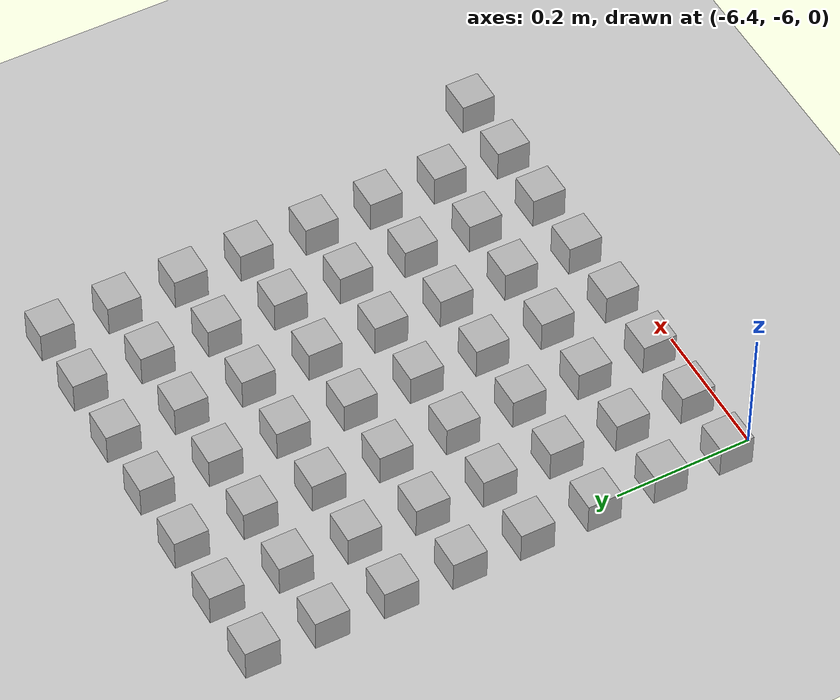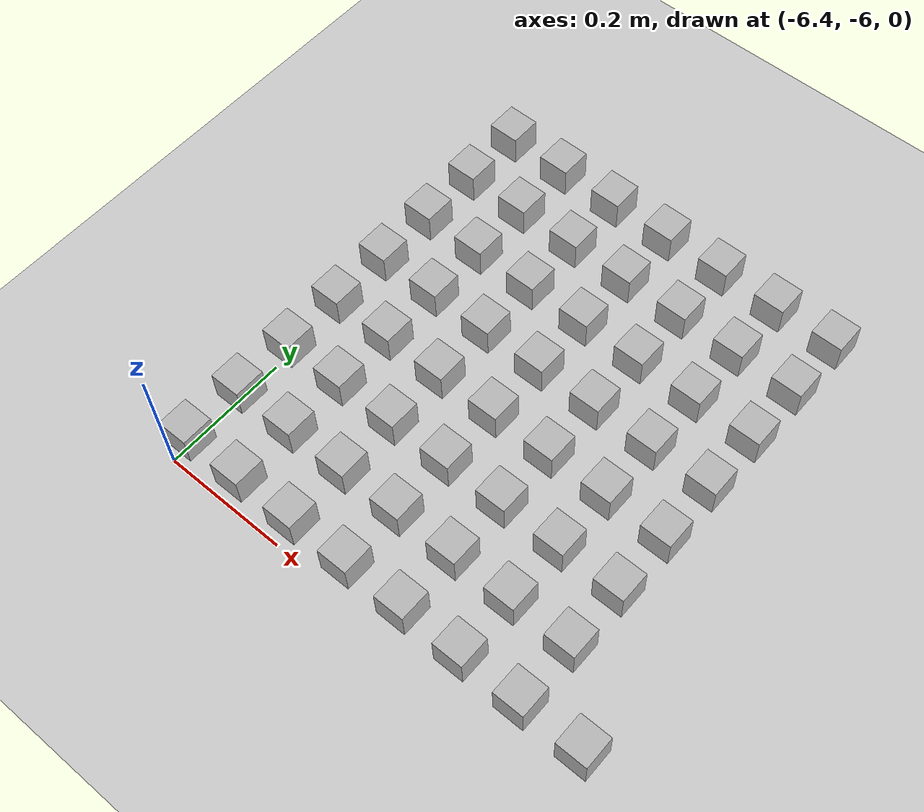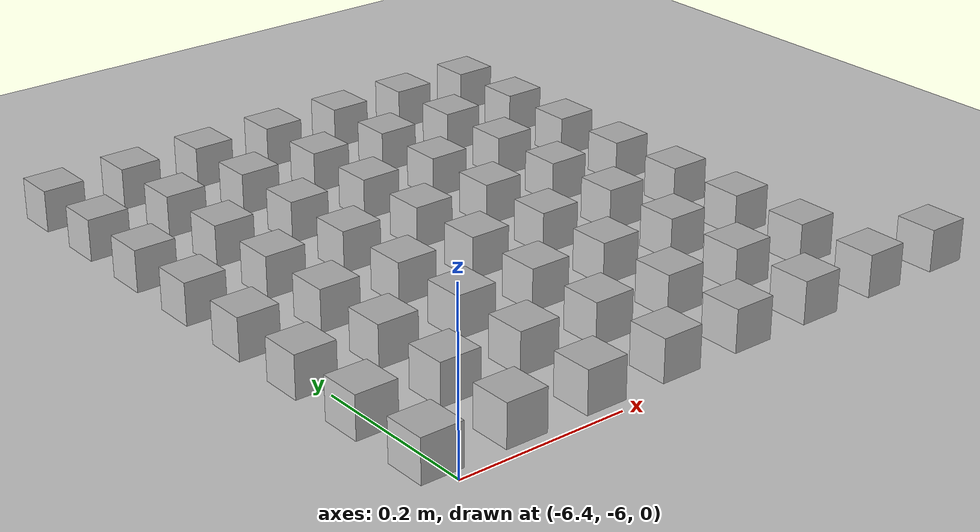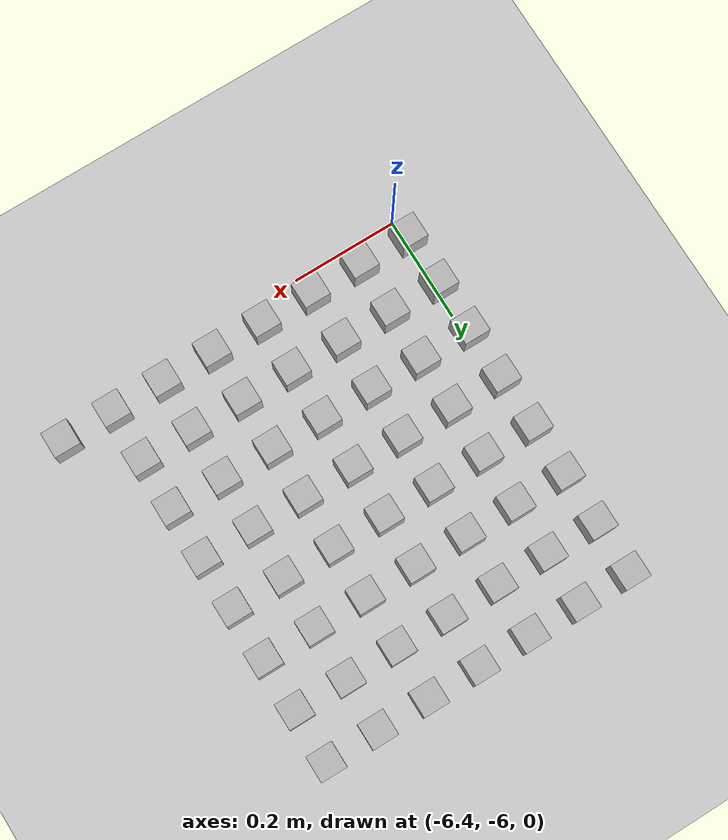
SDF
<sdf version="1.6">
 <world name="default">
  <model name="ground_plane">
   <static>1</static>
   <link name="link">
    <collision name="collision">
     <geometry><plane><normal>0 0 1</normal><size>100 100</size></plane></geometry>
     <surface><friction><ode><mu>100</mu><mu2>50</mu2></ode></friction></surface>
    </collision>
    <visual name="visual">
     <cast_shadows>0</cast_shadows>
     <geometry><plane><normal>0 0 1</normal><size>100 100</size></plane></geometry>
     <material>
      <script><uri>file://media/materials/scripts/gazebo.material</uri><name>Gazebo/Grey</name></script>
     </material>
    </visual>
   </link>
  </model>
  <model name="at384">
   <static>0</static>
   <link name="link">
    <inertial>
     <mass>0.01</mass>
     <inertia><ixx>4e-05</ixx><ixy>0</ixy><ixz>0</ixz><iyy>4e-05</iyy><iyz>0</iyz><izz>4e-05</izz></inertia>
    </inertial>
    <visual name="visual">
     <geometry><box><size>0.05 0.05 0.05</size></box></geometry>
     <material>
      <script>
       <uri>model://at0/materials/scripts</uri>
       <uri>model://at0/materials/textures</uri>
       <name>at0/Diffuse</name>
      </script>
     </material>
    </visual>
    <collision name="collision">
     <geometry><box><size>0.05 0.05 0.05</size></box></geometry>
     <surface><friction><ode><mu>0.8</mu><mu2>0.7</mu2></ode></friction></surface>
    </collision>
   </link>
   <pose>-6.40765 -5.96082 0.025 0 -0 0</pose>
  </model>
  <model name="at385">
   <static>0</static>
   <link name="link">
    <inertial>
     <mass>0.01</mass>
     <inertia><ixx>4e-05</ixx><ixy>0</ixy><ixz>0</ixz><iyy>4e-05</iyy><iyz>0</iyz><izz>4e-05</izz></inertia>
    </inertial>
    <visual name="visual">
     <geometry><box><size>0.05 0.05 0.05</size></box></geometry>
     <material>
      <script>
       <uri>model://at0/materials/scripts</uri>
       <uri>model://at0/materials/textures</uri>
       <name>at0/Diffuse</name>
      </script>
     </material>
    </visual>
    <collision name="collision">
     <geometry><box><size>0.05 0.05 0.05</size></box></geometry>
     <surface><friction><ode><mu>0.8</mu><mu2>0.7</mu2></ode></friction></surface>
    </collision>
   </link>
   <pose>-6.30765 -5.96082 0.025 0 -0 0</pose>
  </model>
  <model name="at386">
   <static>0</static>
   <link name="link">
    <inertial>
     <mass>0.01</mass>
     <inertia><ixx>4e-05</ixx><ixy>0</ixy><ixz>0</ixz><iyy>4e-05</iyy><iyz>0</iyz><izz>4e-05</izz></inertia>
    </inertial>
    <visual name="visual">
     <geometry><box><size>0.05 0.05 0.05</size></box></geometry>
     <material>
      <script>
       <uri>model://at0/materials/scripts</uri>
       <uri>model://at0/materials/textures</uri>
       <name>at0/Diffuse</name>
      </script>
     </material>
    </visual>
    <collision name="collision">
     <geometry><box><size>0.05 0.05 0.05</size></box></geometry>
     <surface><friction><ode><mu>0.8</mu><mu2>0.7</mu2></ode></friction></surface>
    </collision>
   </link>
   <pose>-6.20765 -5.96082 0.025 0 -0 0</pose>
  </model>
  <model name="at387">
   <static>0</static>
   <link name="link">
    <inertial>
     <mass>0.01</mass>
     <inertia><ixx>4e-05</ixx><ixy>0</ixy><ixz>0</ixz><iyy>4e-05</iyy><iyz>0</iyz><izz>4e-05</izz></inertia>
    </inertial>
    <visual name="visual">
     <geometry><box><size>0.05 0.05 0.05</size></box></geometry>
     <material>
      <script>
       <uri>model://at0/materials/scripts</uri>
       <uri>model://at0/materials/textures</uri>
       <name>at0/Diffuse</name>
      </script>
     </material>
    </visual>
    <collision name="collision">
     <geometry><box><size>0.05 0.05 0.05</size></box></geometry>
     <surface><friction><ode><mu>0.8</mu><mu2>0.7</mu2></ode></friction></surface>
    </collision>
   </link>
   <pose>-6.10765 -5.96082 0.025 0 -0 0</pose>
  </model>
  <model name="at388">
   <static>0</static>
   <link name="link">
    <inertial>
     <mass>0.01</mass>
     <inertia><ixx>4e-05</ixx><ixy>0</ixy><ixz>0</ixz><iyy>4e-05</iyy><iyz>0</iyz><izz>4e-05</izz></inertia>
    </inertial>
    <visual name="visual">
     <geometry><box><size>0.05 0.05 0.05</size></box></geometry>
     <material>
      <script>
       <uri>model://at0/materials/scripts</uri>
       <uri>model://at0/materials/textures</uri>
       <name>at0/Diffuse</name>
      </script>
     </material>
    </visual>
    <collision name="collision">
     <geometry><box><size>0.05 0.05 0.05</size></box></geometry>
     <surface><friction><ode><mu>0.8</mu><mu2>0.7</mu2></ode></friction></surface>
    </collision>
   </link>
   <pose>-6.00765 -5.96082 0.025 0 -0 0</pose>
  </model>
  <model name="at389">
   <static>0</static>
   <link name="link">
    <inertial>
     <mass>0.01</mass>
     <inertia><ixx>4e-05</ixx><ixy>0</ixy><ixz>0</ixz><iyy>4e-05</iyy><iyz>0</iyz><izz>4e-05</izz></inertia>
    </inertial>
    <visual name="visual">
     <geometry><box><size>0.05 0.05 0.05</size></box></geometry>
     <material>
      <script>
       <uri>model://at0/materials/scripts</uri>
       <uri>model://at0/materials/textures</uri>
       <name>at0/Diffuse</name>
      </script>
     </material>
    </visual>
    <collision name="collision">
     <geometry><box><size>0.05 0.05 0.05</size></box></geometry>
     <surface><friction><ode><mu>0.8</mu><mu2>0.7</mu2></ode></friction></surface>
    </collision>
   </link>
   <pose>-5.90765 -5.96082 0.025 0 -0 0</pose>
  </model>
  <model name="at390">
   <static>0</static>
   <link name="link">
    <inertial>
     <mass>0.01</mass>
     <inertia><ixx>4e-05</ixx><ixy>0</ixy><ixz>0</ixz><iyy>4e-05</iyy><iyz>0</iyz><izz>4e-05</izz></inertia>
    </inertial>
    <visual name="visual">
     <geometry><box><size>0.05 0.05 0.05</size></box></geometry>
     <material>
      <script>
       <uri>model://at0/materials/scripts</uri>
       <uri>model://at0/materials/textures</uri>
       <name>at0/Diffuse</name>
      </script>
     </material>
    </visual>
    <collision name="collision">
     <geometry><box><size>0.05 0.05 0.05</size></box></geometry>
     <surface><friction><ode><mu>0.8</mu><mu2>0.7</mu2></ode></friction></surface>
    </collision>
   </link>
   <pose>-5.80765 -5.96082 0.025 0 -0 0</pose>
  </model>
  <model name="at391">
   <static>0</static>
   <link name="link">
    <inertial>
     <mass>0.01</mass>
     <inertia><ixx>4e-05</ixx><ixy>0</ixy><ixz>0</ixz><iyy>4e-05</iyy><iyz>0</iyz><izz>4e-05</izz></inertia>
    </inertial>
    <visual name="visual">
     <geometry><box><size>0.05 0.05 0.05</size></box></geometry>
     <material>
      <script>
       <uri>model://at0/materials/scripts</uri>
       <uri>model://at0/materials/textures</uri>
       <name>at0/Diffuse</name>
      </script>
     </material>
    </visual>
    <collision name="collision">
     <geometry><box><size>0.05 0.05 0.05</size></box></geometry>
     <surface><friction><ode><mu>0.8</mu><mu2>0.7</mu2></ode></friction></surface>
    </collision>
   </link>
   <pose>-5.70765 -5.96082 0.025 0 -0 0</pose>
  </model>
  <model name="at392">
   <static>0</static>
   <link name="link">
    <inertial>
     <mass>0.01</mass>
     <inertia><ixx>4e-05</ixx><ixy>0</ixy><ixz>0</ixz><iyy>4e-05</iyy><iyz>0</iyz><izz>4e-05</izz></inertia>
    </inertial>
    <visual name="visual">
     <geometry><box><size>0.05 0.05 0.05</size></box></geometry>
     <material>
      <script>
       <uri>model://at0/materials/scripts</uri>
       <uri>model://at0/materials/textures</uri>
       <name>at0/Diffuse</name>
      </script>
     </material>
    </visual>
    <collision name="collision">
     <geometry><box><size>0.05 0.05 0.05</size></box></geometry>
     <surface><friction><ode><mu>0.8</mu><mu2>0.7</mu2></ode></friction></surface>
    </collision>
   </link>
   <pose>-6.40765 -5.86082 0.025 0 -0 0</pose>
  </model>
  <model name="at393">
   <static>0</static>
   <link name="link">
    <inertial>
     <mass>0.01</mass>
     <inertia><ixx>4e-05</ixx><ixy>0</ixy><ixz>0</ixz><iyy>4e-05</iyy><iyz>0</iyz><izz>4e-05</izz></inertia>
    </inertial>
    <visual name="visual">
     <geometry><box><size>0.05 0.05 0.05</size></box></geometry>
     <material>
      <script>
       <uri>model://at0/materials/scripts</uri>
       <uri>model://at0/materials/textures</uri>
       <name>at0/Diffuse</name>
      </script>
     </material>
    </visual>
    <collision name="collision">
     <geometry><box><size>0.05 0.05 0.05</size></box></geometry>
     <surface><friction><ode><mu>0.8</mu><mu2>0.7</mu2></ode></friction></surface>
    </collision>
   </link>
   <pose>-6.30765 -5.86082 0.025 0 -0 0</pose>
  </model>
  <model name="at394">
   <static>0</static>
   <link name="link">
    <inertial>
     <mass>0.01</mass>
     <inertia><ixx>4e-05</ixx><ixy>0</ixy><ixz>0</ixz><iyy>4e-05</iyy><iyz>0</iyz><izz>4e-05</izz></inertia>
    </inertial>
    <visual name="visual">
     <geometry><box><size>0.05 0.05 0.05</size></box></geometry>
     <material>
      <script>
       <uri>model://at0/materials/scripts</uri>
       <uri>model://at0/materials/textures</uri>
       <name>at0/Diffuse</name>
      </script>
     </material>
    </visual>
    <collision name="collision">
     <geometry><box><size>0.05 0.05 0.05</size></box></geometry>
     <surface><friction><ode><mu>0.8</mu><mu2>0.7</mu2></ode></friction></surface>
    </collision>
   </link>
   <pose>-6.20765 -5.86082 0.025 0 -0 0</pose>
  </model>
  <model name="at395">
   <static>0</static>
   <link name="link">
    <inertial>
     <mass>0.01</mass>
     <inertia><ixx>4e-05</ixx><ixy>0</ixy><ixz>0</ixz><iyy>4e-05</iyy><iyz>0</iyz><izz>4e-05</izz></inertia>
    </inertial>
    <visual name="visual">
     <geometry><box><size>0.05 0.05 0.05</size></box></geometry>
     <material>
      <script>
       <uri>model://at0/materials/scripts</uri>
       <uri>model://at0/materials/textures</uri>
       <name>at0/Diffuse</name>
      </script>
     </material>
    </visual>
    <collision name="collision">
     <geometry><box><size>0.05 0.05 0.05</size></box></geometry>
     <surface><friction><ode><mu>0.8</mu><mu2>0.7</mu2></ode></friction></surface>
    </collision>
   </link>
   <pose>-6.10765 -5.86082 0.025 0 -0 0</pose>
  </model>
  <model name="at396">
   <static>0</static>
   <link name="link">
    <inertial>
     <mass>0.01</mass>
     <inertia><ixx>4e-05</ixx><ixy>0</ixy><ixz>0</ixz><iyy>4e-05</iyy><iyz>0</iyz><izz>4e-05</izz></inertia>
    </inertial>
    <visual name="visual">
     <geometry><box><size>0.05 0.05 0.05</size></box></geometry>
     <material>
      <script>
       <uri>model://at0/materials/scripts</uri>
       <uri>model://at0/materials/textures</uri>
       <name>at0/Diffuse</name>
      </script>
     </material>
    </visual>
    <collision name="collision">
     <geometry><box><size>0.05 0.05 0.05</size></box></geometry>
     <surface><friction><ode><mu>0.8</mu><mu2>0.7</mu2></ode></friction></surface>
    </collision>
   </link>
   <pose>-6.00765 -5.86082 0.025 0 -0 0</pose>
  </model>
  <model name="at397">
   <static>0</static>
   <link name="link">
    <inertial>
     <mass>0.01</mass>
     <inertia><ixx>4e-05</ixx><ixy>0</ixy><ixz>0</ixz><iyy>4e-05</iyy><iyz>0</iyz><izz>4e-05</izz></inertia>
    </inertial>
    <visual name="visual">
     <geometry><box><size>0.05 0.05 0.05</size></box></geometry>
     <material>
      <script>
       <uri>model://at0/materials/scripts</uri>
       <uri>model://at0/materials/textures</uri>
       <name>at0/Diffuse</name>
      </script>
     </material>
    </visual>
    <collision name="collision">
     <geometry><box><size>0.05 0.05 0.05</size></box></geometry>
     <surface><friction><ode><mu>0.8</mu><mu2>0.7</mu2></ode></friction></surface>
    </collision>
   </link>
   <pose>-5.90765 -5.86082 0.025 0 -0 0</pose>
  </model>
  <model name="at398">
   <static>0</static>
   <link name="link">
    <inertial>
     <mass>0.01</mass>
     <inertia><ixx>4e-05</ixx><ixy>0</ixy><ixz>0</ixz><iyy>4e-05</iyy><iyz>0</iyz><izz>4e-05</izz></inertia>
    </inertial>
    <visual name="visual">
     <geometry><box><size>0.05 0.05 0.05</size></box></geometry>
     <material>
      <script>
       <uri>model://at0/materials/scripts</uri>
       <uri>model://at0/materials/textures</uri>
       <name>at0/Diffuse</name>
      </script>
     </material>
    </visual>
    <collision name="collision">
     <geometry><box><size>0.05 0.05 0.05</size></box></geometry>
     <surface><friction><ode><mu>0.8</mu><mu2>0.7</mu2></ode></friction></surface>
    </collision>
   </link>
   <pose>-5.80765 -5.86082 0.025 0 -0 0</pose>
  </model>
  <model name="at400">
   <static>0</static>
   <link name="link">
    <inertial>
     <mass>0.01</mass>
     <inertia><ixx>4e-05</ixx><ixy>0</ixy><ixz>0</ixz><iyy>4e-05</iyy><iyz>0</iyz><izz>4e-05</izz></inertia>
    </inertial>
    <visual name="visual">
     <geometry><box><size>0.05 0.05 0.05</size></box></geometry>
     <material>
      <script>
       <uri>model://at0/materials/scripts</uri>
       <uri>model://at0/materials/textures</uri>
       <name>at0/Diffuse</name>
      </script>
     </material>
    </visual>
    <collision name="collision">
     <geometry><box><size>0.05 0.05 0.05</size></box></geometry>
     <surface><friction><ode><mu>0.8</mu><mu2>0.7</mu2></ode></friction></surface>
    </collision>
   </link>
   <pose>-6.40765 -5.76082 0.025 0 -0 0</pose>
  </model>
  <model name="at401">
   <static>0</static>
   <link name="link">
    <inertial>
     <mass>0.01</mass>
     <inertia><ixx>4e-05</ixx><ixy>0</ixy><ixz>0</ixz><iyy>4e-05</iyy><iyz>0</iyz><izz>4e-05</izz></inertia>
    </inertial>
    <visual name="visual">
     <geometry><box><size>0.05 0.05 0.05</size></box></geometry>
     <material>
      <script>
       <uri>model://at0/materials/scripts</uri>
       <uri>model://at0/materials/textures</uri>
       <name>at0/Diffuse</name>
      </script>
     </material>
    </visual>
    <collision name="collision">
     <geometry><box><size>0.05 0.05 0.05</size></box></geometry>
     <surface><friction><ode><mu>0.8</mu><mu2>0.7</mu2></ode></friction></surface>
    </collision>
   </link>
   <pose>-6.30765 -5.76082 0.025 0 -0 0</pose>
  </model>
  <model name="at402">
   <static>0</static>
   <link name="link">
    <inertial>
     <mass>0.01</mass>
     <inertia><ixx>4e-05</ixx><ixy>0</ixy><ixz>0</ixz><iyy>4e-05</iyy><iyz>0</iyz><izz>4e-05</izz></inertia>
    </inertial>
    <visual name="visual">
     <geometry><box><size>0.05 0.05 0.05</size></box></geometry>
     <material>
      <script>
       <uri>model://at0/materials/scripts</uri>
       <uri>model://at0/materials/textures</uri>
       <name>at0/Diffuse</name>
      </script>
     </material>
    </visual>
    <collision name="collision">
     <geometry><box><size>0.05 0.05 0.05</size></box></geometry>
     <surface><friction><ode><mu>0.8</mu><mu2>0.7</mu2></ode></friction></surface>
    </collision>
   </link>
   <pose>-6.20765 -5.76082 0.025 0 -0 0</pose>
  </model>
  <model name="at403">
   <static>0</static>
   <link name="link">
    <inertial>
     <mass>0.01</mass>
     <inertia><ixx>4e-05</ixx><ixy>0</ixy><ixz>0</ixz><iyy>4e-05</iyy><iyz>0</iyz><izz>4e-05</izz></inertia>
    </inertial>
    <visual name="visual">
     <geometry><box><size>0.05 0.05 0.05</size></box></geometry>
     <material>
      <script>
       <uri>model://at0/materials/scripts</uri>
       <uri>model://at0/materials/textures</uri>
       <name>at0/Diffuse</name>
      </script>
     </material>
    </visual>
    <collision name="collision">
     <geometry><box><size>0.05 0.05 0.05</size></box></geometry>
     <surface><friction><ode><mu>0.8</mu><mu2>0.7</mu2></ode></friction></surface>
    </collision>
   </link>
   <pose>-6.10765 -5.76082 0.025 0 -0 0</pose>
  </model>
  <model name="at404">
   <static>0</static>
   <link name="link">
    <inertial>
     <mass>0.01</mass>
     <inertia><ixx>4e-05</ixx><ixy>0</ixy><ixz>0</ixz><iyy>4e-05</iyy><iyz>0</iyz><izz>4e-05</izz></inertia>
    </inertial>
    <visual name="visual">
     <geometry><box><size>0.05 0.05 0.05</size></box></geometry>
     <material>
      <script>
       <uri>model://at0/materials/scripts</uri>
       <uri>model://at0/materials/textures</uri>
       <name>at0/Diffuse</name>
      </script>
     </material>
    </visual>
    <collision name="collision">
     <geometry><box><size>0.05 0.05 0.05</size></box></geometry>
     <surface><friction><ode><mu>0.8</mu><mu2>0.7</mu2></ode></friction></surface>
    </collision>
   </link>
   <pose>-6.00765 -5.76082 0.025 0 -0 0</pose>
  </model>
  <model name="at405">
   <static>0</static>
   <link name="link">
    <inertial>
     <mass>0.01</mass>
     <inertia><ixx>4e-05</ixx><ixy>0</ixy><ixz>0</ixz><iyy>4e-05</iyy><iyz>0</iyz><izz>4e-05</izz></inertia>
    </inertial>
    <visual name="visual">
     <geometry><box><size>0.05 0.05 0.05</size></box></geometry>
     <material>
      <script>
       <uri>model://at0/materials/scripts</uri>
       <uri>model://at0/materials/textures</uri>
       <name>at0/Diffuse</name>
      </script>
     </material>
    </visual>
    <collision name="collision">
     <geometry><box><size>0.05 0.05 0.05</size></box></geometry>
     <surface><friction><ode><mu>0.8</mu><mu2>0.7</mu2></ode></friction></surface>
    </collision>
   </link>
   <pose>-5.90765 -5.76082 0.025 0 -0 0</pose>
  </model>
  <model name="at406">
   <static>0</static>
   <link name="link">
    <inertial>
     <mass>0.01</mass>
     <inertia><ixx>4e-05</ixx><ixy>0</ixy><ixz>0</ixz><iyy>4e-05</iyy><iyz>0</iyz><izz>4e-05</izz></inertia>
    </inertial>
    <visual name="visual">
     <geometry><box><size>0.05 0.05 0.05</size></box></geometry>
     <material>
      <script>
       <uri>model://at0/materials/scripts</uri>
       <uri>model://at0/materials/textures</uri>
       <name>at0/Diffuse</name>
      </script>
     </material>
    </visual>
    <collision name="collision">
     <geometry><box><size>0.05 0.05 0.05</size></box></geometry>
     <surface><friction><ode><mu>0.8</mu><mu2>0.7</mu2></ode></friction></surface>
    </collision>
   </link>
   <pose>-5.80765 -5.76082 0.025 0 -0 0</pose>
  </model>
  <model name="at408">
   <static>0</static>
   <link name="link">
    <inertial>
     <mass>0.01</mass>
     <inertia><ixx>4e-05</ixx><ixy>0</ixy><ixz>0</ixz><iyy>4e-05</iyy><iyz>0</iyz><izz>4e-05</izz></inertia>
    </inertial>
    <visual name="visual">
     <geometry><box><size>0.05 0.05 0.05</size></box></geometry>
     <material>
      <script>
       <uri>model://at0/materials/scripts</uri>
       <uri>model://at0/materials/textures</uri>
       <name>at0/Diffuse</name>
      </script>
     </material>
    </visual>
    <collision name="collision">
     <geometry><box><size>0.05 0.05 0.05</size></box></geometry>
     <surface><friction><ode><mu>0.8</mu><mu2>0.7</mu2></ode></friction></surface>
    </collision>
   </link>
   <pose>-6.40765 -5.66082 0.025 0 -0 0</pose>
  </model>
  <model name="at409">
   <static>0</static>
   <link name="link">
    <inertial>
     <mass>0.01</mass>
     <inertia><ixx>4e-05</ixx><ixy>0</ixy><ixz>0</ixz><iyy>4e-05</iyy><iyz>0</iyz><izz>4e-05</izz></inertia>
    </inertial>
    <visual name="visual">
     <geometry><box><size>0.05 0.05 0.05</size></box></geometry>
     <material>
      <script>
       <uri>model://at0/materials/scripts</uri>
       <uri>model://at0/materials/textures</uri>
       <name>at0/Diffuse</name>
      </script>
     </material>
    </visual>
    <collision name="collision">
     <geometry><box><size>0.05 0.05 0.05</size></box></geometry>
     <surface><friction><ode><mu>0.8</mu><mu2>0.7</mu2></ode></friction></surface>
    </collision>
   </link>
   <pose>-6.30765 -5.66082 0.025 0 -0 0</pose>
  </model>
  <model name="at410">
   <static>0</static>
   <link name="link">
    <inertial>
     <mass>0.01</mass>
     <inertia><ixx>4e-05</ixx><ixy>0</ixy><ixz>0</ixz><iyy>4e-05</iyy><iyz>0</iyz><izz>4e-05</izz></inertia>
    </inertial>
    <visual name="visual">
     <geometry><box><size>0.05 0.05 0.05</size></box></geometry>
     <material>
      <script>
       <uri>model://at0/materials/scripts</uri>
       <uri>model://at0/materials/textures</uri>
       <name>at0/Diffuse</name>
      </script>
     </material>
    </visual>
    <collision name="collision">
     <geometry><box><size>0.05 0.05 0.05</size></box></geometry>
     <surface><friction><ode><mu>0.8</mu><mu2>0.7</mu2></ode></friction></surface>
    </collision>
   </link>
   <pose>-6.20765 -5.66082 0.025 0 -0 0</pose>
  </model>
  <model name="at411">
   <static>0</static>
   <link name="link">
    <inertial>
     <mass>0.01</mass>
     <inertia><ixx>4e-05</ixx><ixy>0</ixy><ixz>0</ixz><iyy>4e-05</iyy><iyz>0</iyz><izz>4e-05</izz></inertia>
    </inertial>
    <visual name="visual">
     <geometry><box><size>0.05 0.05 0.05</size></box></geometry>
     <material>
      <script>
       <uri>model://at0/materials/scripts</uri>
       <uri>model://at0/materials/textures</uri>
       <name>at0/Diffuse</name>
      </script>
     </material>
    </visual>
    <collision name="collision">
     <geometry><box><size>0.05 0.05 0.05</size></box></geometry>
     <surface><friction><ode><mu>0.8</mu><mu2>0.7</mu2></ode></friction></surface>
    </collision>
   </link>
   <pose>-6.10765 -5.66082 0.025 0 -0 0</pose>
  </model>
  <model name="at412">
   <static>0</static>
   <link name="link">
    <inertial>
     <mass>0.01</mass>
     <inertia><ixx>4e-05</ixx><ixy>0</ixy><ixz>0</ixz><iyy>4e-05</iyy><iyz>0</iyz><izz>4e-05</izz></inertia>
    </inertial>
    <visual name="visual">
     <geometry><box><size>0.05 0.05 0.05</size></box></geometry>
     <material>
      <script>
       <uri>model://at0/materials/scripts</uri>
       <uri>model://at0/materials/textures</uri>
       <name>at0/Diffuse</name>
      </script>
     </material>
    </visual>
    <collision name="collision">
     <geometry><box><size>0.05 0.05 0.05</size></box></geometry>
     <surface><friction><ode><mu>0.8</mu><mu2>0.7</mu2></ode></friction></surface>
    </collision>
   </link>
   <pose>-6.00765 -5.66082 0.025 0 -0 0</pose>
  </model>
  <model name="at413">
   <static>0</static>
   <link name="link">
    <inertial>
     <mass>0.01</mass>
     <inertia><ixx>4e-05</ixx><ixy>0</ixy><ixz>0</ixz><iyy>4e-05</iyy><iyz>0</iyz><izz>4e-05</izz></inertia>
    </inertial>
    <visual name="visual">
     <geometry><box><size>0.05 0.05 0.05</size></box></geometry>
     <material>
      <script>
       <uri>model://at0/materials/scripts</uri>
       <uri>model://at0/materials/textures</uri>
       <name>at0/Diffuse</name>
      </script>
     </material>
    </visual>
    <collision name="collision">
     <geometry><box><size>0.05 0.05 0.05</size></box></geometry>
     <surface><friction><ode><mu>0.8</mu><mu2>0.7</mu2></ode></friction></surface>
    </collision>
   </link>
   <pose>-5.90765 -5.66082 0.025 0 -0 0</pose>
  </model>
  <model name="at414">
   <static>0</static>
   <link name="link">
    <inertial>
     <mass>0.01</mass>
     <inertia><ixx>4e-05</ixx><ixy>0</ixy><ixz>0</ixz><iyy>4e-05</iyy><iyz>0</iyz><izz>4e-05</izz></inertia>
    </inertial>
    <visual name="visual">
     <geometry><box><size>0.05 0.05 0.05</size></box></geometry>
     <material>
      <script>
       <uri>model://at0/materials/scripts</uri>
       <uri>model://at0/materials/textures</uri>
       <name>at0/Diffuse</name>
      </script>
     </material>
    </visual>
    <collision name="collision">
     <geometry><box><size>0.05 0.05 0.05</size></box></geometry>
     <surface><friction><ode><mu>0.8</mu><mu2>0.7</mu2></ode></friction></surface>
    </collision>
   </link>
   <pose>-5.80765 -5.66082 0.025 0 -0 0</pose>
  </model>
  <model name="at416">
   <static>0</static>
   <link name="link">
    <inertial>
     <mass>0.01</mass>
     <inertia><ixx>4e-05</ixx><ixy>0</ixy><ixz>0</ixz><iyy>4e-05</iyy><iyz>0</iyz><izz>4e-05</izz></inertia>
    </inertial>
    <visual name="visual">
     <geometry><box><size>0.05 0.05 0.05</size></box></geometry>
     <material>
      <script>
       <uri>model://at0/materials/scripts</uri>
       <uri>model://at0/materials/textures</uri>
       <name>at0/Diffuse</name>
      </script>
     </material>
    </visual>
    <collision name="collision">
     <geometry><box><size>0.05 0.05 0.05</size></box></geometry>
     <surface><friction><ode><mu>0.8</mu><mu2>0.7</mu2></ode></friction></surface>
    </collision>
   </link>
   <pose>-6.40765 -5.56082 0.025 0 -0 0</pose>
  </model>
  <model name="at417">
   <static>0</static>
   <link name="link">
    <inertial>
     <mass>0.01</mass>
     <inertia><ixx>4e-05</ixx><ixy>0</ixy><ixz>0</ixz><iyy>4e-05</iyy><iyz>0</iyz><izz>4e-05</izz></inertia>
    </inertial>
    <visual name="visual">
     <geometry><box><size>0.05 0.05 0.05</size></box></geometry>
     <material>
      <script>
       <uri>model://at0/materials/scripts</uri>
       <uri>model://at0/materials/textures</uri>
       <name>at0/Diffuse</name>
      </script>
     </material>
    </visual>
    <collision name="collision">
     <geometry><box><size>0.05 0.05 0.05</size></box></geometry>
     <surface><friction><ode><mu>0.8</mu><mu2>0.7</mu2></ode></friction></surface>
    </collision>
   </link>
   <pose>-6.30765 -5.56082 0.025 0 -0 0</pose>
  </model>
  <model name="at418">
   <static>0</static>
   <link name="link">
    <inertial>
     <mass>0.01</mass>
     <inertia><ixx>4e-05</ixx><ixy>0</ixy><ixz>0</ixz><iyy>4e-05</iyy><iyz>0</iyz><izz>4e-05</izz></inertia>
    </inertial>
    <visual name="visual">
     <geometry><box><size>0.05 0.05 0.05</size></box></geometry>
     <material>
      <script>
       <uri>model://at0/materials/scripts</uri>
       <uri>model://at0/materials/textures</uri>
       <name>at0/Diffuse</name>
      </script>
     </material>
    </visual>
    <collision name="collision">
     <geometry><box><size>0.05 0.05 0.05</size></box></geometry>
     <surface><friction><ode><mu>0.8</mu><mu2>0.7</mu2></ode></friction></surface>
    </collision>
   </link>
   <pose>-6.20765 -5.56082 0.025 0 -0 0</pose>
  </model>
  <model name="at419">
   <static>0</static>
   <link name="link">
    <inertial>
     <mass>0.01</mass>
     <inertia><ixx>4e-05</ixx><ixy>0</ixy><ixz>0</ixz><iyy>4e-05</iyy><iyz>0</iyz><izz>4e-05</izz></inertia>
    </inertial>
    <visual name="visual">
     <geometry><box><size>0.05 0.05 0.05</size></box></geometry>
     <material>
      <script>
       <uri>model://at0/materials/scripts</uri>
       <uri>model://at0/materials/textures</uri>
       <name>at0/Diffuse</name>
      </script>
     </material>
    </visual>
    <collision name="collision">
     <geometry><box><size>0.05 0.05 0.05</size></box></geometry>
     <surface><friction><ode><mu>0.8</mu><mu2>0.7</mu2></ode></friction></surface>
    </collision>
   </link>
   <pose>-6.10765 -5.56082 0.025 0 -0 0</pose>
  </model>
  <model name="at420">
   <static>0</static>
   <link name="link">
    <inertial>
     <mass>0.01</mass>
     <inertia><ixx>4e-05</ixx><ixy>0</ixy><ixz>0</ixz><iyy>4e-05</iyy><iyz>0</iyz><izz>4e-05</izz></inertia>
    </inertial>
    <visual name="visual">
     <geometry><box><size>0.05 0.05 0.05</size></box></geometry>
     <material>
      <script>
       <uri>model://at0/materials/scripts</uri>
       <uri>model://at0/materials/textures</uri>
       <name>at0/Diffuse</name>
      </script>
     </material>
    </visual>
    <collision name="collision">
     <geometry><box><size>0.05 0.05 0.05</size></box></geometry>
     <surface><friction><ode><mu>0.8</mu><mu2>0.7</mu2></ode></friction></surface>
    </collision>
   </link>
   <pose>-6.00765 -5.56082 0.025 0 -0 0</pose>
  </model>
  <model name="at421">
   <static>0</static>
   <link name="link">
    <inertial>
     <mass>0.01</mass>
     <inertia><ixx>4e-05</ixx><ixy>0</ixy><ixz>0</ixz><iyy>4e-05</iyy><iyz>0</iyz><izz>4e-05</izz></inertia>
    </inertial>
    <visual name="visual">
     <geometry><box><size>0.05 0.05 0.05</size></box></geometry>
     <material>
      <script>
       <uri>model://at0/materials/scripts</uri>
       <uri>model://at0/materials/textures</uri>
       <name>at0/Diffuse</name>
      </script>
     </material>
    </visual>
    <collision name="collision">
     <geometry><box><size>0.05 0.05 0.05</size></box></geometry>
     <surface><friction><ode><mu>0.8</mu><mu2>0.7</mu2></ode></friction></surface>
    </collision>
   </link>
   <pose>-5.90765 -5.56082 0.025 0 -0 0</pose>
  </model>
  <model name="at422">
   <static>0</static>
   <link name="link">
    <inertial>
     <mass>0.01</mass>
     <inertia><ixx>4e-05</ixx><ixy>0</ixy><ixz>0</ixz><iyy>4e-05</iyy><iyz>0</iyz><izz>4e-05</izz></inertia>
    </inertial>
    <visual name="visual">
     <geometry><box><size>0.05 0.05 0.05</size></box></geometry>
     <material>
      <script>
       <uri>model://at0/materials/scripts</uri>
       <uri>model://at0/materials/textures</uri>
       <name>at0/Diffuse</name>
      </script>
     </material>
    </visual>
    <collision name="collision">
     <geometry><box><size>0.05 0.05 0.05</size></box></geometry>
     <surface><friction><ode><mu>0.8</mu><mu2>0.7</mu2></ode></friction></surface>
    </collision>
   </link>
   <pose>-5.80765 -5.56082 0.025 0 -0 0</pose>
  </model>
  <model name="at424">
   <static>0</static>
   <link name="link">
    <inertial>
     <mass>0.01</mass>
     <inertia><ixx>4e-05</ixx><ixy>0</ixy><ixz>0</ixz><iyy>4e-05</iyy><iyz>0</iyz><izz>4e-05</izz></inertia>
    </inertial>
    <visual name="visual">
     <geometry><box><size>0.05 0.05 0.05</size></box></geometry>
     <material>
      <script>
       <uri>model://at0/materials/scripts</uri>
       <uri>model://at0/materials/textures</uri>
       <name>at0/Diffuse</name>
      </script>
     </material>
    </visual>
    <collision name="collision">
     <geometry><box><size>0.05 0.05 0.05</size></box></geometry>
     <surface><friction><ode><mu>0.8</mu><mu2>0.7</mu2></ode></friction></surface>
    </collision>
   </link>
   <pose>-6.40765 -5.46082 0.025 0 -0 0</pose>
  </model>
  <model name="at425">
   <static>0</static>
   <link name="link">
    <inertial>
     <mass>0.01</mass>
     <inertia><ixx>4e-05</ixx><ixy>0</ixy><ixz>0</ixz><iyy>4e-05</iyy><iyz>0</iyz><izz>4e-05</izz></inertia>
    </inertial>
    <visual name="visual">
     <geometry><box><size>0.05 0.05 0.05</size></box></geometry>
     <material>
      <script>
       <uri>model://at0/materials/scripts</uri>
       <uri>model://at0/materials/textures</uri>
       <name>at0/Diffuse</name>
      </script>
     </material>
    </visual>
    <collision name="collision">
     <geometry><box><size>0.05 0.05 0.05</size></box></geometry>
     <surface><friction><ode><mu>0.8</mu><mu2>0.7</mu2></ode></friction></surface>
    </collision>
   </link>
   <pose>-6.30765 -5.46082 0.025 0 -0 0</pose>
  </model>
  <model name="at426">
   <static>0</static>
   <link name="link">
    <inertial>
     <mass>0.01</mass>
     <inertia><ixx>4e-05</ixx><ixy>0</ixy><ixz>0</ixz><iyy>4e-05</iyy><iyz>0</iyz><izz>4e-05</izz></inertia>
    </inertial>
    <visual name="visual">
     <geometry><box><size>0.05 0.05 0.05</size></box></geometry>
     <material>
      <script>
       <uri>model://at0/materials/scripts</uri>
       <uri>model://at0/materials/textures</uri>
       <name>at0/Diffuse</name>
      </script>
     </material>
    </visual>
    <collision name="collision">
     <geometry><box><size>0.05 0.05 0.05</size></box></geometry>
     <surface><friction><ode><mu>0.8</mu><mu2>0.7</mu2></ode></friction></surface>
    </collision>
   </link>
   <pose>-6.20765 -5.46082 0.025 0 -0 0</pose>
  </model>
  <model name="at427">
   <static>0</static>
   <link name="link">
    <inertial>
     <mass>0.01</mass>
     <inertia><ixx>4e-05</ixx><ixy>0</ixy><ixz>0</ixz><iyy>4e-05</iyy><iyz>0</iyz><izz>4e-05</izz></inertia>
    </inertial>
    <visual name="visual">
     <geometry><box><size>0.05 0.05 0.05</size></box></geometry>
     <material>
      <script>
       <uri>model://at0/materials/scripts</uri>
       <uri>model://at0/materials/textures</uri>
       <name>at0/Diffuse</name>
      </script>
     </material>
    </visual>
    <collision name="collision">
     <geometry><box><size>0.05 0.05 0.05</size></box></geometry>
     <surface><friction><ode><mu>0.8</mu><mu2>0.7</mu2></ode></friction></surface>
    </collision>
   </link>
   <pose>-6.10765 -5.46082 0.025 0 -0 0</pose>
  </model>
  <model name="at428">
   <static>0</static>
   <link name="link">
    <inertial>
     <mass>0.01</mass>
     <inertia><ixx>4e-05</ixx><ixy>0</ixy><ixz>0</ixz><iyy>4e-05</iyy><iyz>0</iyz><izz>4e-05</izz></inertia>
    </inertial>
    <visual name="visual">
     <geometry><box><size>0.05 0.05 0.05</size></box></geometry>
     <material>
      <script>
       <uri>model://at0/materials/scripts</uri>
       <uri>model://at0/materials/textures</uri>
       <name>at0/Diffuse</name>
      </script>
     </material>
    </visual>
    <collision name="collision">
     <geometry><box><size>0.05 0.05 0.05</size></box></geometry>
     <surface><friction><ode><mu>0.8</mu><mu2>0.7</mu2></ode></friction></surface>
    </collision>
   </link>
   <pose>-6.00765 -5.46082 0.025 0 -0 0</pose>
  </model>
  <model name="at429">
   <static>0</static>
   <link name="link">
    <inertial>
     <mass>0.01</mass>
     <inertia><ixx>4e-05</ixx><ixy>0</ixy><ixz>0</ixz><iyy>4e-05</iyy><iyz>0</iyz><izz>4e-05</izz></inertia>
    </inertial>
    <visual name="visual">
     <geometry><box><size>0.05 0.05 0.05</size></box></geometry>
     <material>
      <script>
       <uri>model://at0/materials/scripts</uri>
       <uri>model://at0/materials/textures</uri>
       <name>at0/Diffuse</name>
      </script>
     </material>
    </visual>
    <collision name="collision">
     <geometry><box><size>0.05 0.05 0.05</size></box></geometry>
     <surface><friction><ode><mu>0.8</mu><mu2>0.7</mu2></ode></friction></surface>
    </collision>
   </link>
   <pose>-5.90765 -5.46082 0.025 0 -0 0</pose>
  </model>
  <model name="at430">
   <static>0</static>
   <link name="link">
    <inertial>
     <mass>0.01</mass>
     <inertia><ixx>4e-05</ixx><ixy>0</ixy><ixz>0</ixz><iyy>4e-05</iyy><iyz>0</iyz><izz>4e-05</izz></inertia>
    </inertial>
    <visual name="visual">
     <geometry><box><size>0.05 0.05 0.05</size></box></geometry>
     <material>
      <script>
       <uri>model://at0/materials/scripts</uri>
       <uri>model://at0/materials/textures</uri>
       <name>at0/Diffuse</name>
      </script>
     </material>
    </visual>
    <collision name="collision">
     <geometry><box><size>0.05 0.05 0.05</size></box></geometry>
     <surface><friction><ode><mu>0.8</mu><mu2>0.7</mu2></ode></friction></surface>
    </collision>
   </link>
   <pose>-5.80765 -5.46082 0.025 0 -0 0</pose>
  </model>
  <model name="at432">
   <static>0</static>
   <link name="link">
    <inertial>
     <mass>0.01</mass>
     <inertia><ixx>4e-05</ixx><ixy>0</ixy><ixz>0</ixz><iyy>4e-05</iyy><iyz>0</iyz><izz>4e-05</izz></inertia>
    </inertial>
    <visual name="visual">
     <geometry><box><size>0.05 0.05 0.05</size></box></geometry>
     <material>
      <script>
       <uri>model://at0/materials/scripts</uri>
       <uri>model://at0/materials/textures</uri>
       <name>at0/Diffuse</name>
      </script>
     </material>
    </visual>
    <collision name="collision">
     <geometry><box><size>0.05 0.05 0.05</size></box></geometry>
     <surface><friction><ode><mu>0.8</mu><mu2>0.7</mu2></ode></friction></surface>
    </collision>
   </link>
   <pose>-6.40765 -5.36082 0.025 0 -0 0</pose>
  </model>
  <model name="at433">
   <static>0</static>
   <link name="link">
    <inertial>
     <mass>0.01</mass>
     <inertia><ixx>4e-05</ixx><ixy>0</ixy><ixz>0</ixz><iyy>4e-05</iyy><iyz>0</iyz><izz>4e-05</izz></inertia>
    </inertial>
    <visual name="visual">
     <geometry><box><size>0.05 0.05 0.05</size></box></geometry>
     <material>
      <script>
       <uri>model://at0/materials/scripts</uri>
       <uri>model://at0/materials/textures</uri>
       <name>at0/Diffuse</name>
      </script>
     </material>
    </visual>
    <collision name="collision">
     <geometry><box><size>0.05 0.05 0.05</size></box></geometry>
     <surface><friction><ode><mu>0.8</mu><mu2>0.7</mu2></ode></friction></surface>
    </collision>
   </link>
   <pose>-6.30765 -5.36082 0.025 0 -0 0</pose>
  </model>
  <model name="at434">
   <static>0</static>
   <link name="link">
    <inertial>
     <mass>0.01</mass>
     <inertia><ixx>4e-05</ixx><ixy>0</ixy><ixz>0</ixz><iyy>4e-05</iyy><iyz>0</iyz><izz>4e-05</izz></inertia>
    </inertial>
    <visual name="visual">
     <geometry><box><size>0.05 0.05 0.05</size></box></geometry>
     <material>
      <script>
       <uri>model://at0/materials/scripts</uri>
       <uri>model://at0/materials/textures</uri>
       <name>at0/Diffuse</name>
      </script>
     </material>
    </visual>
    <collision name="collision">
     <geometry><box><size>0.05 0.05 0.05</size></box></geometry>
     <surface><friction><ode><mu>0.8</mu><mu2>0.7</mu2></ode></friction></surface>
    </collision>
   </link>
   <pose>-6.20765 -5.36082 0.025 0 -0 0</pose>
  </model>
  <model name="at435">
   <static>0</static>
   <link name="link">
    <inertial>
     <mass>0.01</mass>
     <inertia><ixx>4e-05</ixx><ixy>0</ixy><ixz>0</ixz><iyy>4e-05</iyy><iyz>0</iyz><izz>4e-05</izz></inertia>
    </inertial>
    <visual name="visual">
     <geometry><box><size>0.05 0.05 0.05</size></box></geometry>
     <material>
      <script>
       <uri>model://at0/materials/scripts</uri>
       <uri>model://at0/materials/textures</uri>
       <name>at0/Diffuse</name>
      </script>
     </material>
    </visual>
    <collision name="collision">
     <geometry><box><size>0.05 0.05 0.05</size></box></geometry>
     <surface><friction><ode><mu>0.8</mu><mu2>0.7</mu2></ode></friction></surface>
    </collision>
   </link>
   <pose>-6.10765 -5.36082 0.025 0 -0 0</pose>
  </model>
  <model name="at436">
   <static>0</static>
   <link name="link">
    <inertial>
     <mass>0.01</mass>
     <inertia><ixx>4e-05</ixx><ixy>0</ixy><ixz>0</ixz><iyy>4e-05</iyy><iyz>0</iyz><izz>4e-05</izz></inertia>
    </inertial>
    <visual name="visual">
     <geometry><box><size>0.05 0.05 0.05</size></box></geometry>
     <material>
      <script>
       <uri>model://at0/materials/scripts</uri>
       <uri>model://at0/materials/textures</uri>
       <name>at0/Diffuse</name>
      </script>
     </material>
    </visual>
    <collision name="collision">
     <geometry><box><size>0.05 0.05 0.05</size></box></geometry>
     <surface><friction><ode><mu>0.8</mu><mu2>0.7</mu2></ode></friction></surface>
    </collision>
   </link>
   <pose>-6.00765 -5.36082 0.025 0 -0 0</pose>
  </model>
  <model name="at437">
   <static>0</static>
   <link name="link">
    <inertial>
     <mass>0.01</mass>
     <inertia><ixx>4e-05</ixx><ixy>0</ixy><ixz>0</ixz><iyy>4e-05</iyy><iyz>0</iyz><izz>4e-05</izz></inertia>
    </inertial>
    <visual name="visual">
     <geometry><box><size>0.05 0.05 0.05</size></box></geometry>
     <material>
      <script>
       <uri>model://at0/materials/scripts</uri>
       <uri>model://at0/materials/textures</uri>
       <name>at0/Diffuse</name>
      </script>
     </material>
    </visual>
    <collision name="collision">
     <geometry><box><size>0.05 0.05 0.05</size></box></geometry>
     <surface><friction><ode><mu>0.8</mu><mu2>0.7</mu2></ode></friction></surface>
    </collision>
   </link>
   <pose>-5.90765 -5.36082 0.025 0 -0 0</pose>
  </model>
  <model name="at438">
   <static>0</static>
   <link name="link">
    <inertial>
     <mass>0.01</mass>
     <inertia><ixx>4e-05</ixx><ixy>0</ixy><ixz>0</ixz><iyy>4e-05</iyy><iyz>0</iyz><izz>4e-05</izz></inertia>
    </inertial>
    <visual name="visual">
     <geometry><box><size>0.05 0.05 0.05</size></box></geometry>
     <material>
      <script>
       <uri>model://at0/materials/scripts</uri>
       <uri>model://at0/materials/textures</uri>
       <name>at0/Diffuse</name>
      </script>
     </material>
    </visual>
    <collision name="collision">
     <geometry><box><size>0.05 0.05 0.05</size></box></geometry>
     <surface><friction><ode><mu>0.8</mu><mu2>0.7</mu2></ode></friction></surface>
    </collision>
   </link>
   <pose>-5.80765 -5.36082 0.025 0 -0 0</pose>
  </model>
  <model name="at440">
   <static>0</static>
   <link name="link">
    <inertial>
     <mass>0.01</mass>
     <inertia><ixx>4e-05</ixx><ixy>0</ixy><ixz>0</ixz><iyy>4e-05</iyy><iyz>0</iyz><izz>4e-05</izz></inertia>
    </inertial>
    <visual name="visual">
     <geometry><box><size>0.05 0.05 0.05</size></box></geometry>
     <material>
      <script>
       <uri>model://at0/materials/scripts</uri>
       <uri>model://at0/materials/textures</uri>
       <name>at0/Diffuse</name>
      </script>
     </material>
    </visual>
    <collision name="collision">
     <geometry><box><size>0.05 0.05 0.05</size></box></geometry>
     <surface><friction><ode><mu>0.8</mu><mu2>0.7</mu2></ode></friction></surface>
    </collision>
   </link>
   <pose>-6.40765 -5.26082 0.025 0 -0 0</pose>
  </model>
  <model name="at441">
   <static>0</static>
   <link name="link">
    <inertial>
     <mass>0.01</mass>
     <inertia><ixx>4e-05</ixx><ixy>0</ixy><ixz>0</ixz><iyy>4e-05</iyy><iyz>0</iyz><izz>4e-05</izz></inertia>
    </inertial>
    <visual name="visual">
     <geometry><box><size>0.05 0.05 0.05</size></box></geometry>
     <material>
      <script>
       <uri>model://at0/materials/scripts</uri>
       <uri>model://at0/materials/textures</uri>
       <name>at0/Diffuse</name>
      </script>
     </material>
    </visual>
    <collision name="collision">
     <geometry><box><size>0.05 0.05 0.05</size></box></geometry>
     <surface><friction><ode><mu>0.8</mu><mu2>0.7</mu2></ode></friction></surface>
    </collision>
   </link>
   <pose>-6.30765 -5.26082 0.025 0 -0 0</pose>
  </model>
  <model name="at442">
   <static>0</static>
   <link name="link">
    <inertial>
     <mass>0.01</mass>
     <inertia><ixx>4e-05</ixx><ixy>0</ixy><ixz>0</ixz><iyy>4e-05</iyy><iyz>0</iyz><izz>4e-05</izz></inertia>
    </inertial>
    <visual name="visual">
     <geometry><box><size>0.05 0.05 0.05</size></box></geometry>
     <material>
      <script>
       <uri>model://at0/materials/scripts</uri>
       <uri>model://at0/materials/textures</uri>
       <name>at0/Diffuse</name>
      </script>
     </material>
    </visual>
    <collision name="collision">
     <geometry><box><size>0.05 0.05 0.05</size></box></geometry>
     <surface><friction><ode><mu>0.8</mu><mu2>0.7</mu2></ode></friction></surface>
    </collision>
   </link>
   <pose>-6.20765 -5.26082 0.025 0 -0 0</pose>
  </model>
  <model name="at443">
   <static>0</static>
   <link name="link">
    <inertial>
     <mass>0.01</mass>
     <inertia><ixx>4e-05</ixx><ixy>0</ixy><ixz>0</ixz><iyy>4e-05</iyy><iyz>0</iyz><izz>4e-05</izz></inertia>
    </inertial>
    <visual name="visual">
     <geometry><box><size>0.05 0.05 0.05</size></box></geometry>
     <material>
      <script>
       <uri>model://at0/materials/scripts</uri>
       <uri>model://at0/materials/textures</uri>
       <name>at0/Diffuse</name>
      </script>
     </material>
    </visual>
    <collision name="collision">
     <geometry><box><size>0.05 0.05 0.05</size></box></geometry>
     <surface><friction><ode><mu>0.8</mu><mu2>0.7</mu2></ode></friction></surface>
    </collision>
   </link>
   <pose>-6.10765 -5.26082 0.025 0 -0 0</pose>
  </model>
  <model name="at444">
   <static>0</static>
   <link name="link">
    <inertial>
     <mass>0.01</mass>
     <inertia><ixx>4e-05</ixx><ixy>0</ixy><ixz>0</ixz><iyy>4e-05</iyy><iyz>0</iyz><izz>4e-05</izz></inertia>
    </inertial>
    <visual name="visual">
     <geometry><box><size>0.05 0.05 0.05</size></box></geometry>
     <material>
      <script>
       <uri>model://at0/materials/scripts</uri>
       <uri>model://at0/materials/textures</uri>
       <name>at0/Diffuse</name>
      </script>
     </material>
    </visual>
    <collision name="collision">
     <geometry><box><size>0.05 0.05 0.05</size></box></geometry>
     <surface><friction><ode><mu>0.8</mu><mu2>0.7</mu2></ode></friction></surface>
    </collision>
   </link>
   <pose>-6.00765 -5.26082 0.025 0 -0 0</pose>
  </model>
  <model name="at445">
   <static>0</static>
   <link name="link">
    <inertial>
     <mass>0.01</mass>
     <inertia><ixx>4e-05</ixx><ixy>0</ixy><ixz>0</ixz><iyy>4e-05</iyy><iyz>0</iyz><izz>4e-05</izz></inertia>
    </inertial>
    <visual name="visual">
     <geometry><box><size>0.05 0.05 0.05</size></box></geometry>
     <material>
      <script>
       <uri>model://at0/materials/scripts</uri>
       <uri>model://at0/materials/textures</uri>
       <name>at0/Diffuse</name>
      </script>
     </material>
    </visual>
    <collision name="collision">
     <geometry><box><size>0.05 0.05 0.05</size></box></geometry>
     <surface><friction><ode><mu>0.8</mu><mu2>0.7</mu2></ode></friction></surface>
    </collision>
   </link>
   <pose>-5.90765 -5.26082 0.025 0 -0 0</pose>
  </model>
  <model name="at446">
   <static>0</static>
   <link name="link">
    <inertial>
     <mass>0.01</mass>
     <inertia><ixx>4e-05</ixx><ixy>0</ixy><ixz>0</ixz><iyy>4e-05</iyy><iyz>0</iyz><izz>4e-05</izz></inertia>
    </inertial>
    <visual name="visual">
     <geometry><box><size>0.05 0.05 0.05</size></box></geometry>
     <material>
      <script>
       <uri>model://at0/materials/scripts</uri>
       <uri>model://at0/materials/textures</uri>
       <name>at0/Diffuse</name>
      </script>
     </material>
    </visual>
    <collision name="collision">
     <geometry><box><size>0.05 0.05 0.05</size></box></geometry>
     <surface><friction><ode><mu>0.8</mu><mu2>0.7</mu2></ode></friction></surface>
    </collision>
   </link>
   <pose>-5.80765 -5.26082 0.025 0 -0 0</pose>
  </model>
 </world>
</sdf>
